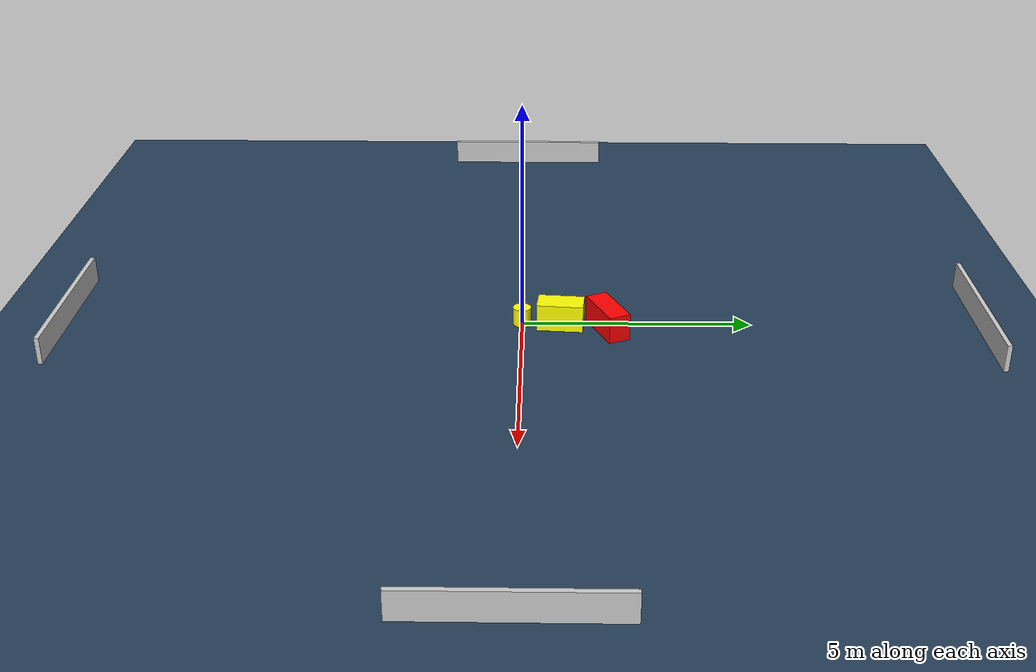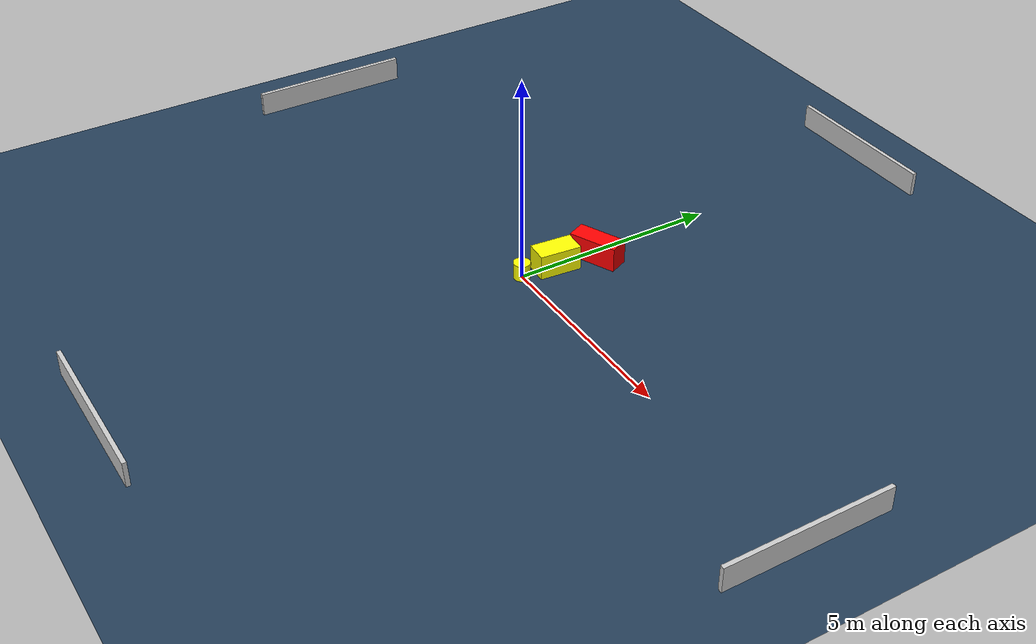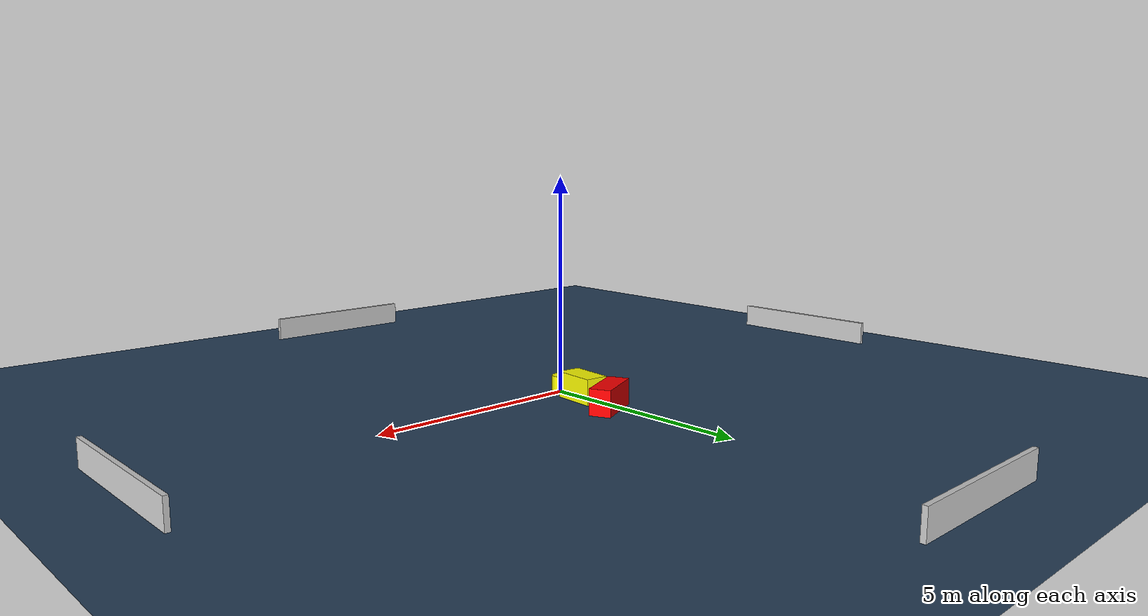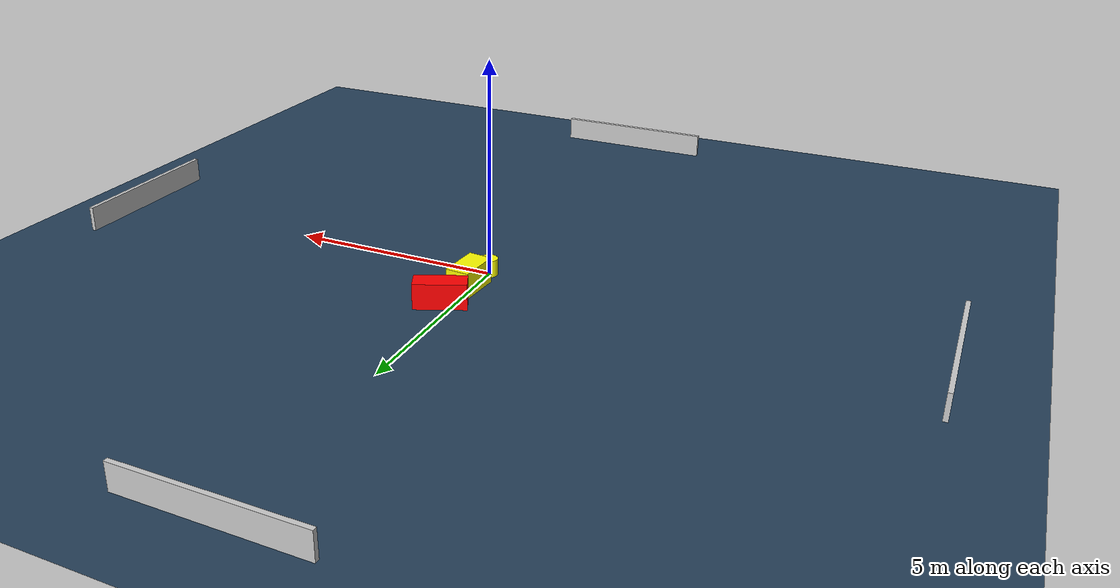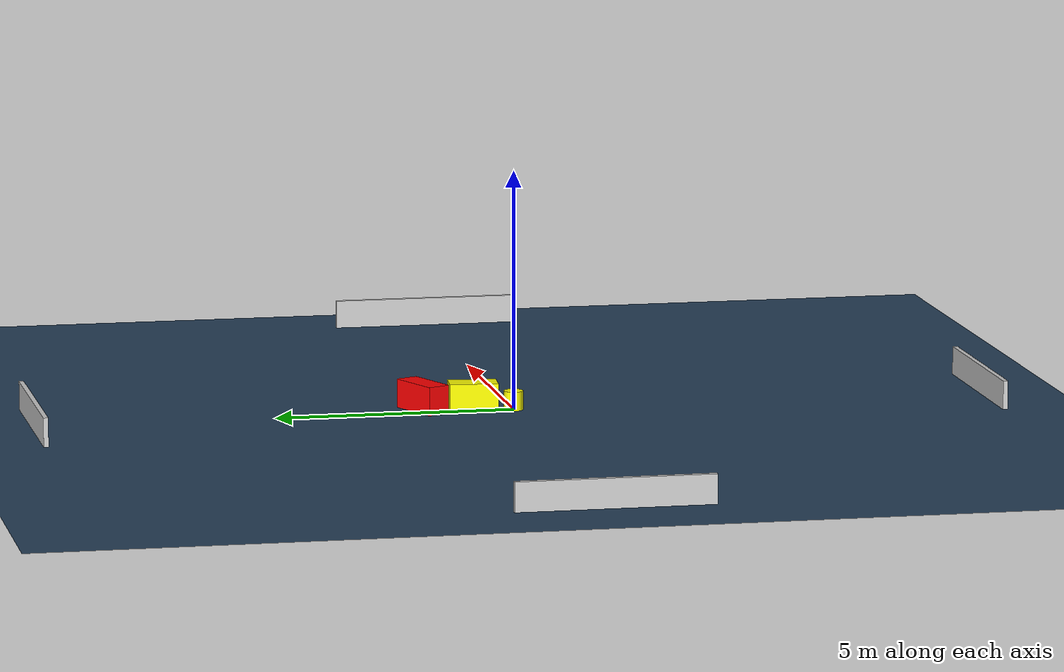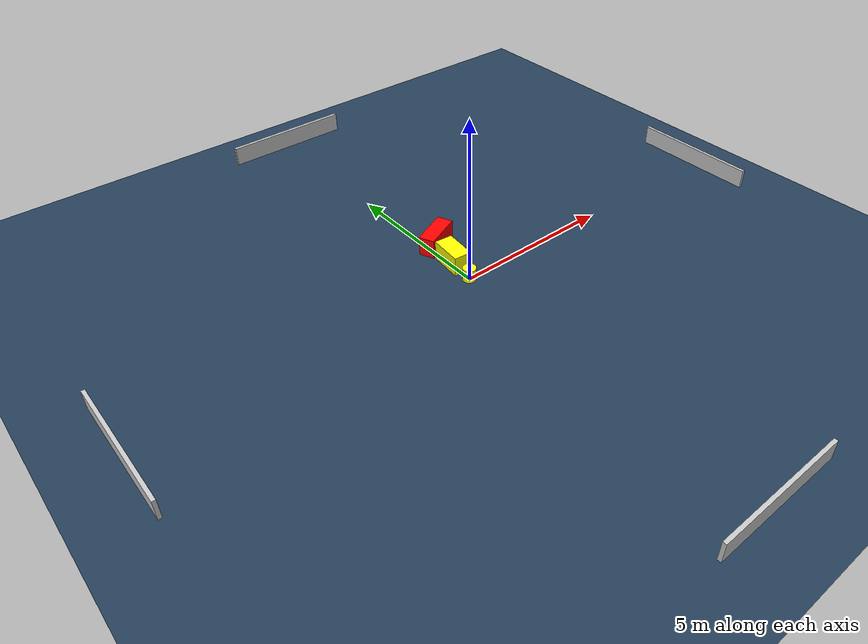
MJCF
<?xml version="1.0" ?>
<mujoco model="generated_environment">
  <option timestep="0.01" integrator="RK4" cone="elliptic"/>
  <default>
    <geom density="1"/>
  </default>
  <asset>
    <texture builtin="gradient" height="3072" name="skybox" rgb1="0.3 0.5 0.7" rgb2="0 0 0" type="skybox" width="512"/>
    <texture builtin="checker" height="300" name="groundplane" rgb1="0.2 0.3 0.4" rgb2="0.1 0.2 0.3" type="2d" width="300"/>
    <material name="groundplane" reflectance="0.2" texrepeat="5 5" texture="groundplane"/>
  </asset>
  <worldbody>
    <light dir="0 0 -1" directional="true" pos="0 0 1.5"/>
    <geom condim="3" friction="0.5 0.005 0.001" material="groundplane" name="floor" pos="0 0 0" size="0 0 0.05" type="plane"/>
    <body name="walls">
      <geom name="wall_1" condim="4" pos="-10.0 0.0 0.3" rgba="0.800000011920929 0.800000011920929 0.800000011920929 1.0" size="0.05 2.0 0.3" type="box"/>
      <geom name="wall_2" condim="4" pos="10.0 0.0 0.3" rgba="0.800000011920929 0.800000011920929 0.800000011920929 1.0" size="0.05 2.0 0.3" type="box"/>
      <geom name="wall_3" condim="4" pos="0.0 -10.0 0.3" rgba="0.800000011920929 0.800000011920929 0.800000011920929 1.0" size="2.0 0.05 0.3" type="box"/>
      <geom name="wall_4" condim="4" pos="0.0 10.0 0.3" rgba="0.800000011920929 0.800000011920929 0.800000011920929 1.0" size="2.0 0.05 0.3" type="box"/>
    </body>
    <body name="robot">
      <joint name="joint_x" type="slide" pos="0 0 0" axis="1 0 0"/>
      <joint name="joint_y" type="slide" pos="0 0 0" axis="0 1 0"/>
      <geom name="robot" type="cylinder" pos="0.0 0.0 0.2" size="0.2 0.2 0.0" mass="5.0" friction="1.0 0.005 0.0001" condim="4" rgba="1.0 1.0 0.0 1.0"/>
    </body>
    <body name="obstacle_1_movable">
      <geom name="obstacle_1_movable" condim="4" pos="0.09521103898663659 0.8396624162182765 0.3" euler="0 0 175.1586561019799" friction="0.0 0.005 0.001" rgba="1.0 1.0 0.0 1.0" size="0.27575941706560264 0.5046480599536324 0.3" type="box" mass="0.1"/>
      <joint type="free"/>
    </body>
    <body name="obstacle_2_static">
      <geom name="obstacle_2_static" condim="4" pos="0.2746736574800442 1.86302925751246 0.3" euler="0 0 293.9455065559428" friction="0.0 0.005 0.001" rgba="1.0 0.0 0.0 1.0" size="0.24291671429829226 0.5932443065153916 0.3" type="box"/>
    </body>
  </worldbody>
  <actuator>
    <motor name="actuator_x" joint="joint_x" gear="1" ctrlrange="-1 1"/>
    <motor name="actuator_y" joint="joint_y" gear="1" ctrlrange="-1 1"/>
  </actuator>
</mujoco>
